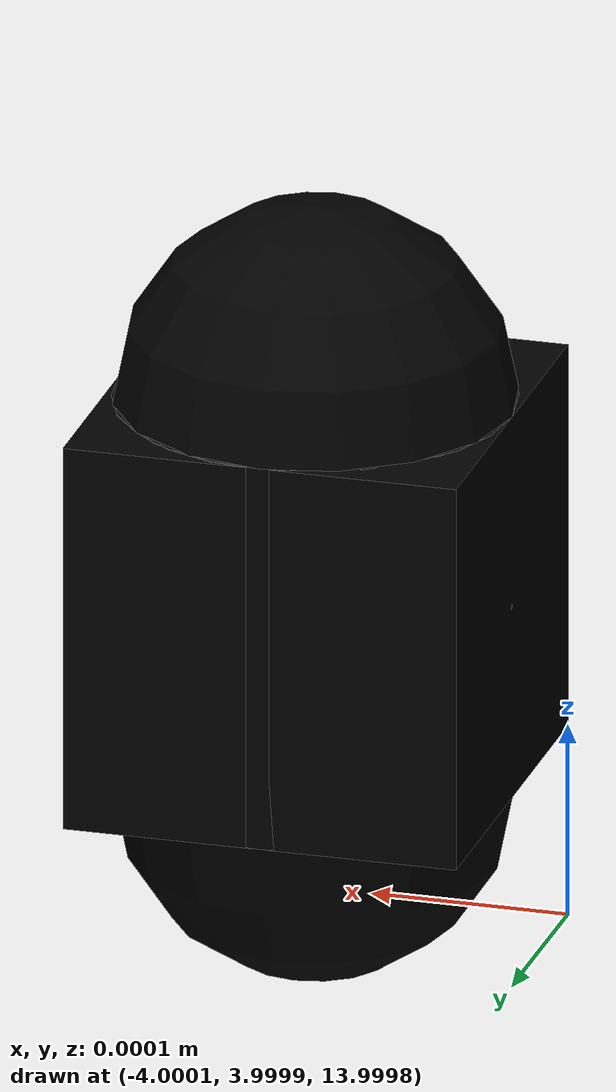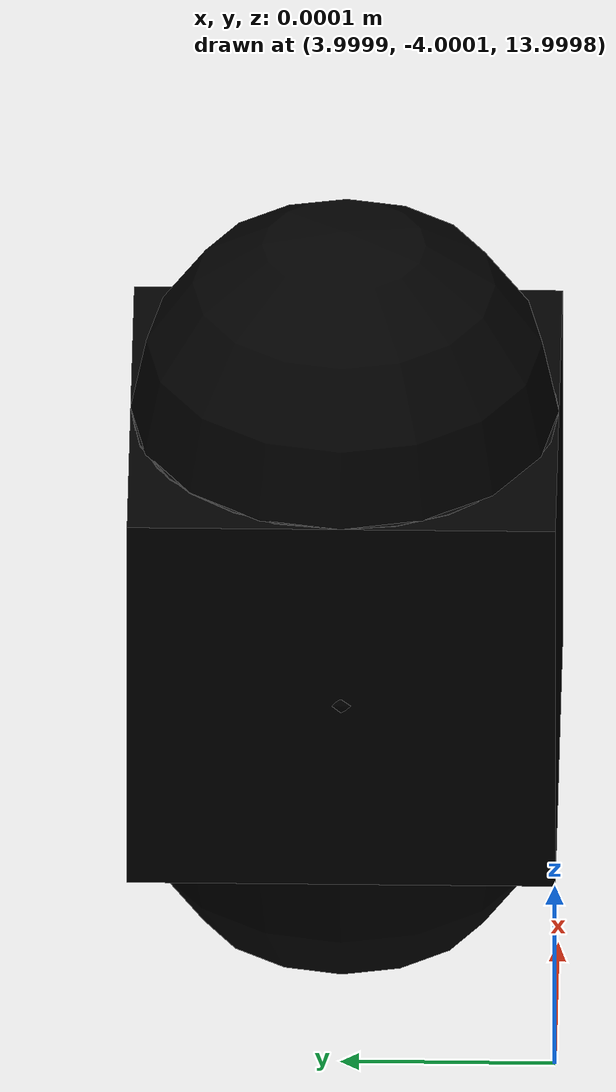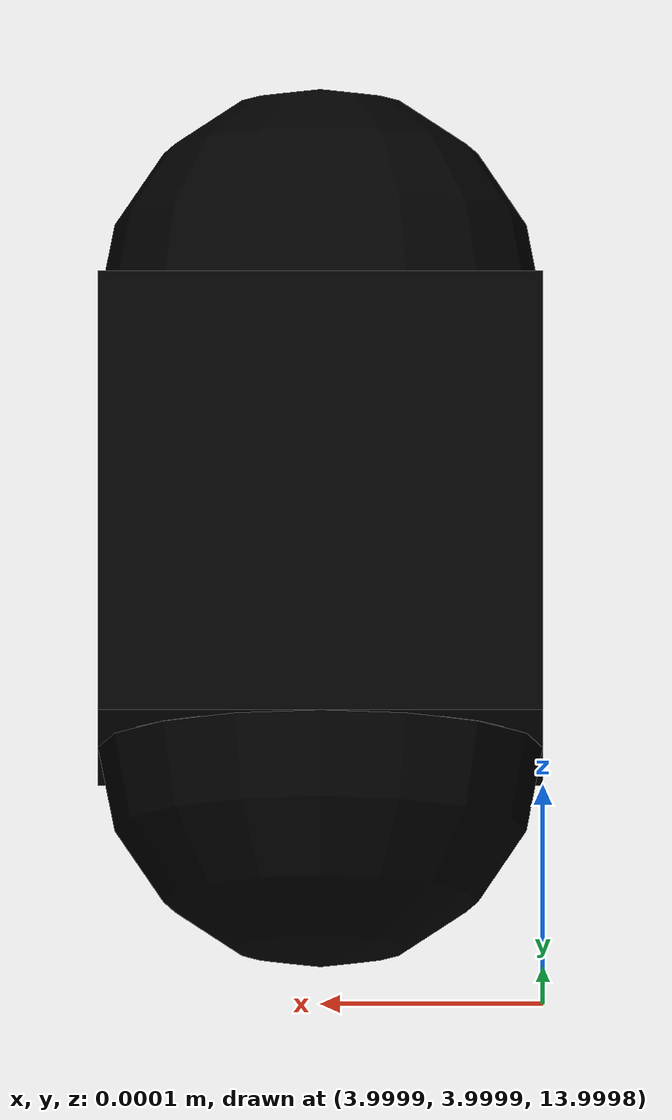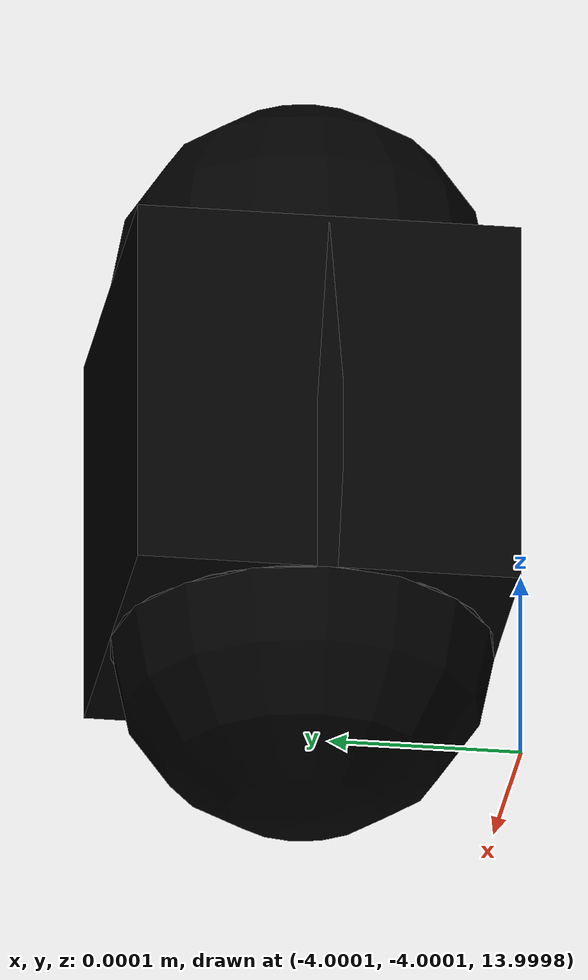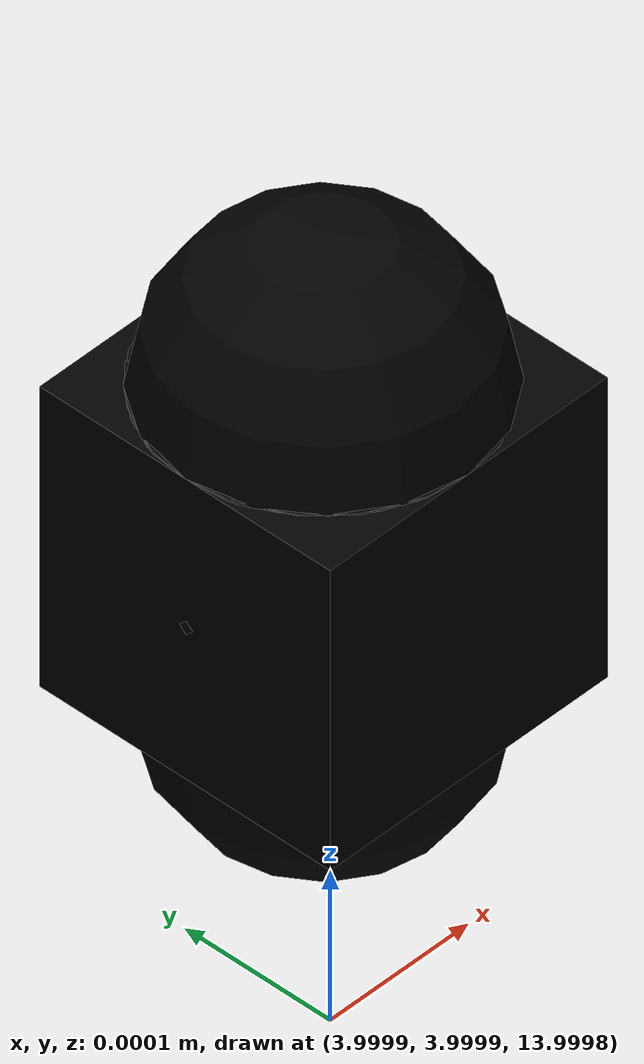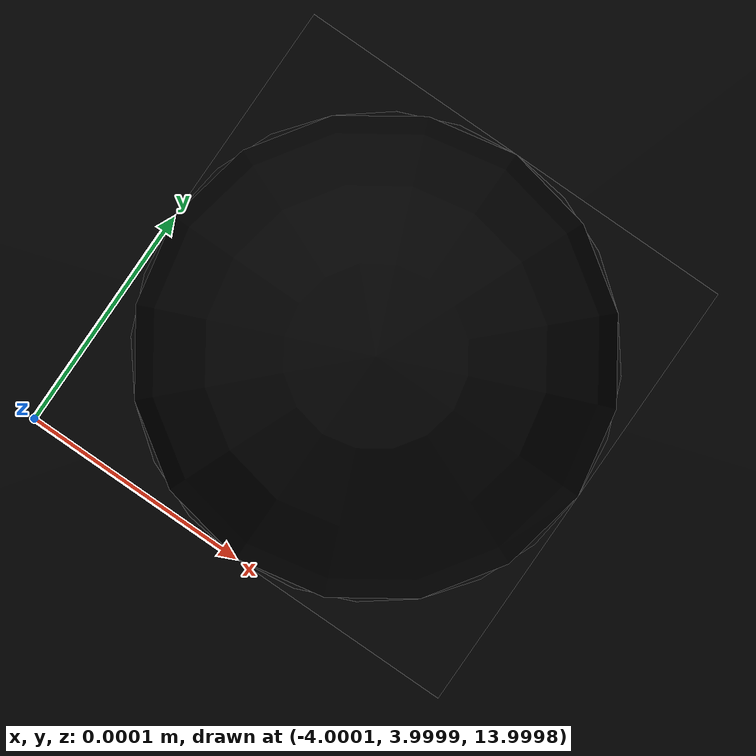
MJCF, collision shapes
<mujoco model="cdpr_mjwarp_object_slots">
  <asset>
    <mesh name="robocasa_apple_visual_mesh"
          file="../../../assets/externals/robocasa/objects/objaverse/apple/apple_20/visual/model_normalized_0.obj"
          scale="0.07 0.07 0.07"/>
    <texture name="robocasa_apple_texture" type="2d"
             file="../../../assets/externals/robocasa/objects/objaverse/apple/apple_20/visual/image0.png"/>
    <material name="robocasa_apple_material" texture="robocasa_apple_texture"
              specular="0.12" shininess="0.2"/>

    <mesh name="robocasa_banana_visual_mesh"
          file="../../../assets/externals/robocasa/objects/objaverse/banana/banana_19/visual/model_normalized_0.obj"
          scale="0.18 0.18 0.18"
          refquat="0.5 0.5 0.5 0.5"/>
    <texture name="robocasa_banana_texture" type="2d"
             file="../../../assets/externals/robocasa/objects/objaverse/banana/banana_19/visual/image0.png"/>
    <material name="robocasa_banana_material" texture="robocasa_banana_texture"
              specular="0.12" shininess="0.2"/>

    <mesh name="robocasa_carrot_visual_mesh"
          file="../../../assets/externals/robocasa/objects/objaverse/carrot/carrot_1/visual/model_normalized_0.obj"
          scale="0.155 0.155 0.155"
          refquat="0.65328148 0.65328148 0.27059805 -0.27059805"/>
    <texture name="robocasa_carrot_texture" type="2d"
             file="../../../assets/externals/robocasa/objects/objaverse/carrot/carrot_1/visual/image0.png"/>
    <material name="robocasa_carrot_material" texture="robocasa_carrot_texture"
              specular="0.12" shininess="0.2"/>

    <mesh name="robocasa_bell_pepper_visual_mesh"
          file="../../../assets/externals/robocasa/objects/objaverse/bell_pepper/bell_pepper_0/visual/model_normalized_0.obj"
          scale="0.11 0.11 0.11"
          refquat="0.70710678 0.70710678 0 0"/>
    <texture name="robocasa_bell_pepper_texture" type="2d"
             file="../../../assets/externals/robocasa/objects/objaverse/bell_pepper/bell_pepper_0/visual/image0.png"/>
    <material name="robocasa_bell_pepper_material"
              texture="robocasa_bell_pepper_texture"
              specular="0.12" shininess="0.2"/>

    <mesh name="robocasa_tomato_visual_mesh"
          file="../../../assets/externals/robocasa/objects/objaverse/tomato/tomato_8/visual/model_normalized_0.obj"
          scale="0.06 0.06 0.06"/>
    <texture name="robocasa_tomato_texture" type="2d"
             file="../../../assets/externals/robocasa/objects/objaverse/tomato/tomato_8/visual/image0.png"/>
    <material name="robocasa_tomato_material" texture="robocasa_tomato_texture"
              specular="0.12" shininess="0.2"/>

    <mesh name="robocasa_orange_visual_mesh"
          file="../../../assets/externals/robocasa/objects/objaverse/orange/orange_4/visual/model_normalized_0.obj"
          scale="0.07 0.07 0.07"/>
    <texture name="robocasa_orange_texture" type="2d"
             file="../../../assets/externals/robocasa/objects/objaverse/orange/orange_4/visual/image0.png"/>
    <material name="robocasa_orange_material" texture="robocasa_orange_texture"
              specular="0.12" shininess="0.2"/>

    <mesh name="robocasa_potato_visual_mesh"
          file="../../../assets/externals/robocasa/objects/objaverse/potato/potato_3/visual/model_normalized_0.obj"
          scale="0.115 0.115 0.115"/>
    <texture name="robocasa_potato_texture" type="2d"
             file="../../../assets/externals/robocasa/objects/objaverse/potato/potato_3/visual/image0.png"/>
    <material name="robocasa_potato_material" texture="robocasa_potato_texture"
              specular="0.12" shininess="0.2"/>

    <mesh name="robocasa_mug_visual_mesh"
          file="../../../assets/externals/robocasa/objects/objaverse/mug/mug_1/visual/model_normalized_0.obj"
          scale="0.115 0.115 0.115"
          refquat="-0.70710678 0 0 0.70710678"/>
    <texture name="robocasa_mug_texture" type="2d"
             file="../../../assets/externals/robocasa/objects/objaverse/mug/mug_1/visual/image0.png"/>
    <material name="robocasa_mug_material" texture="robocasa_mug_texture"
              specular="0.12" shininess="0.2"/>

    <mesh name="robocasa_plate_visual_mesh"
          file="../../../assets/externals/robocasa/objects/objaverse/plate/plate_12/visual/model_normalized_0.obj"
          scale="0.185 0.185 0.185"/>
    <texture name="robocasa_plate_texture" type="2d"
             file="../../../assets/externals/robocasa/objects/objaverse/plate/plate_12/visual/image0.png"/>
    <material name="robocasa_plate_material" texture="robocasa_plate_texture"
              specular="0.12" shininess="0.2"/>

    <mesh name="robocasa_bowl_visual_mesh"
          file="../../../assets/externals/robocasa/objects/objaverse/bowl/bowl_1/visual/model_normalized_0.obj"
          scale="0.12 0.12 0.12"/>
    <texture name="robocasa_bowl_texture" type="2d"
             file="../../../assets/externals/robocasa/objects/objaverse/bowl/bowl_1/visual/image0.png"/>
    <material name="robocasa_bowl_material" texture="robocasa_bowl_texture"
              specular="0.12" shininess="0.2"/>
  </asset>
  <default>
    <default class="mjwarp_object_collision">
      <geom contype="1" conaffinity="7" group="3" condim="3"
            friction="0.95 0.3 0.1" solref="0.008 1"
            solimp="0.90 0.95 0.001" margin="0.001"
            rgba="0 0 0 0"/>
    </default>
    <default class="mjwarp_object_visual">
      <geom type="mesh" contype="0" conaffinity="0" group="1"/>
    </default>
  </default>
  <worldbody>
    <body name="mjwarp_object_slot_0" pos="-4 -4 4">
      <joint name="mjwarp_object_slot_0_free" type="free" damping="0.01"/>
      <inertial pos="0 0 0" mass="0.11"
                diaginertia="0.000064 0.000064 0.000064"/>
      <geom name="mjwarp_slot_0_visual" class="mjwarp_object_visual"
            mesh="robocasa_apple_visual_mesh" material="robocasa_apple_material"/>
      <geom name="mjwarp_slot_0_sphere_0" class="mjwarp_object_collision"
            type="sphere" size="0.038"/>
      <geom name="mjwarp_slot_0_sphere_1" class="mjwarp_object_collision"
            type="sphere" size="0.0001" pos="0 0 10"/>
      <geom name="mjwarp_slot_0_sphere_2" class="mjwarp_object_collision"
            type="sphere" size="0.0001" pos="0 0 10"/>
      <geom name="mjwarp_slot_0_cylinder_0" class="mjwarp_object_collision"
            type="cylinder" size="0.0001 0.0001" pos="0 0 10"/>
      <geom name="mjwarp_slot_0_cylinder_1" class="mjwarp_object_collision"
            type="cylinder" size="0.0001 0.0001" pos="0 0 10"/>
      <geom name="mjwarp_slot_0_cylinder_2" class="mjwarp_object_collision"
            type="cylinder" size="0.0001 0.0001" pos="0 0 10"/>
      <geom name="mjwarp_slot_0_box_0" class="mjwarp_object_collision"
            type="box" size="0.0001 0.0001 0.0001" pos="0 0 10"/>
      <geom name="mjwarp_slot_0_box_1" class="mjwarp_object_collision"
            type="box" size="0.0001 0.0001 0.0001" pos="0 0 10"/>
      <geom name="mjwarp_slot_0_box_2" class="mjwarp_object_collision"
            type="box" size="0.0001 0.0001 0.0001" pos="0 0 10"/>
      <geom name="mjwarp_slot_0_box_3" class="mjwarp_object_collision"
            type="box" size="0.0001 0.0001 0.0001" pos="0 0 10"/>
      <geom name="mjwarp_slot_0_capsule_0" class="mjwarp_object_collision"
            type="capsule" size="0.0001 0.0001" pos="0 0 10"/>
    </body>
    <body name="mjwarp_object_slot_1" pos="-4 4 4">
      <joint name="mjwarp_object_slot_1_free" type="free" damping="0.01"/>
      <inertial pos="0 0 0" mass="0.11"
                diaginertia="0.000064 0.000064 0.000064"/>
      <geom name="mjwarp_slot_1_visual" class="mjwarp_object_visual"
            mesh="robocasa_apple_visual_mesh" material="robocasa_apple_material"/>
      <geom name="mjwarp_slot_1_sphere_0" class="mjwarp_object_collision"
            type="sphere" size="0.038"/>
      <geom name="mjwarp_slot_1_sphere_1" class="mjwarp_object_collision"
            type="sphere" size="0.0001" pos="0 0 10"/>
      <geom name="mjwarp_slot_1_sphere_2" class="mjwarp_object_collision"
            type="sphere" size="0.0001" pos="0 0 10"/>
      <geom name="mjwarp_slot_1_cylinder_0" class="mjwarp_object_collision"
            type="cylinder" size="0.0001 0.0001" pos="0 0 10"/>
      <geom name="mjwarp_slot_1_cylinder_1" class="mjwarp_object_collision"
            type="cylinder" size="0.0001 0.0001" pos="0 0 10"/>
      <geom name="mjwarp_slot_1_cylinder_2" class="mjwarp_object_collision"
            type="cylinder" size="0.0001 0.0001" pos="0 0 10"/>
      <geom name="mjwarp_slot_1_box_0" class="mjwarp_object_collision"
            type="box" size="0.0001 0.0001 0.0001" pos="0 0 10"/>
      <geom name="mjwarp_slot_1_box_1" class="mjwarp_object_collision"
            type="box" size="0.0001 0.0001 0.0001" pos="0 0 10"/>
      <geom name="mjwarp_slot_1_box_2" class="mjwarp_object_collision"
            type="box" size="0.0001 0.0001 0.0001" pos="0 0 10"/>
      <geom name="mjwarp_slot_1_box_3" class="mjwarp_object_collision"
            type="box" size="0.0001 0.0001 0.0001" pos="0 0 10"/>
      <geom name="mjwarp_slot_1_capsule_0" class="mjwarp_object_collision"
            type="capsule" size="0.0001 0.0001" pos="0 0 10"/>
    </body>
    <body name="mjwarp_object_slot_2" pos="4 -4 4">
      <joint name="mjwarp_object_slot_2_free" type="free" damping="0.01"/>
      <inertial pos="0 0 0" mass="0.11"
                diaginertia="0.000064 0.000064 0.000064"/>
      <geom name="mjwarp_slot_2_visual" class="mjwarp_object_visual"
            mesh="robocasa_apple_visual_mesh" material="robocasa_apple_material"/>
      <geom name="mjwarp_slot_2_sphere_0" class="mjwarp_object_collision"
            type="sphere" size="0.038"/>
      <geom name="mjwarp_slot_2_sphere_1" class="mjwarp_object_collision"
            type="sphere" size="0.0001" pos="0 0 10"/>
      <geom name="mjwarp_slot_2_sphere_2" class="mjwarp_object_collision"
            type="sphere" size="0.0001" pos="0 0 10"/>
      <geom name="mjwarp_slot_2_cylinder_0" class="mjwarp_object_collision"
            type="cylinder" size="0.0001 0.0001" pos="0 0 10"/>
      <geom name="mjwarp_slot_2_cylinder_1" class="mjwarp_object_collision"
            type="cylinder" size="0.0001 0.0001" pos="0 0 10"/>
      <geom name="mjwarp_slot_2_cylinder_2" class="mjwarp_object_collision"
            type="cylinder" size="0.0001 0.0001" pos="0 0 10"/>
      <geom name="mjwarp_slot_2_box_0" class="mjwarp_object_collision"
            type="box" size="0.0001 0.0001 0.0001" pos="0 0 10"/>
      <geom name="mjwarp_slot_2_box_1" class="mjwarp_object_collision"
            type="box" size="0.0001 0.0001 0.0001" pos="0 0 10"/>
      <geom name="mjwarp_slot_2_box_2" class="mjwarp_object_collision"
            type="box" size="0.0001 0.0001 0.0001" pos="0 0 10"/>
      <geom name="mjwarp_slot_2_box_3" class="mjwarp_object_collision"
            type="box" size="0.0001 0.0001 0.0001" pos="0 0 10"/>
      <geom name="mjwarp_slot_2_capsule_0" class="mjwarp_object_collision"
            type="capsule" size="0.0001 0.0001" pos="0 0 10"/>
    </body>
    <body name="mjwarp_object_slot_3" pos="4 4 4">
      <joint name="mjwarp_object_slot_3_free" type="free" damping="0.01"/>
      <inertial pos="0 0 0" mass="0.11"
                diaginertia="0.000064 0.000064 0.000064"/>
      <geom name="mjwarp_slot_3_visual" class="mjwarp_object_visual"
            mesh="robocasa_apple_visual_mesh" material="robocasa_apple_material"/>
      <geom name="mjwarp_slot_3_sphere_0" class="mjwarp_object_collision"
            type="sphere" size="0.038"/>
      <geom name="mjwarp_slot_3_sphere_1" class="mjwarp_object_collision"
            type="sphere" size="0.0001" pos="0 0 10"/>
      <geom name="mjwarp_slot_3_sphere_2" class="mjwarp_object_collision"
            type="sphere" size="0.0001" pos="0 0 10"/>
      <geom name="mjwarp_slot_3_cylinder_0" class="mjwarp_object_collision"
            type="cylinder" size="0.0001 0.0001" pos="0 0 10"/>
      <geom name="mjwarp_slot_3_cylinder_1" class="mjwarp_object_collision"
            type="cylinder" size="0.0001 0.0001" pos="0 0 10"/>
      <geom name="mjwarp_slot_3_cylinder_2" class="mjwarp_object_collision"
            type="cylinder" size="0.0001 0.0001" pos="0 0 10"/>
      <geom name="mjwarp_slot_3_box_0" class="mjwarp_object_collision"
            type="box" size="0.0001 0.0001 0.0001" pos="0 0 10"/>
      <geom name="mjwarp_slot_3_box_1" class="mjwarp_object_collision"
            type="box" size="0.0001 0.0001 0.0001" pos="0 0 10"/>
      <geom name="mjwarp_slot_3_box_2" class="mjwarp_object_collision"
            type="box" size="0.0001 0.0001 0.0001" pos="0 0 10"/>
      <geom name="mjwarp_slot_3_box_3" class="mjwarp_object_collision"
            type="box" size="0.0001 0.0001 0.0001" pos="0 0 10"/>
      <geom name="mjwarp_slot_3_capsule_0" class="mjwarp_object_collision"
            type="capsule" size="0.0001 0.0001" pos="0 0 10"/>
    </body>
  </worldbody>
</mujoco>
